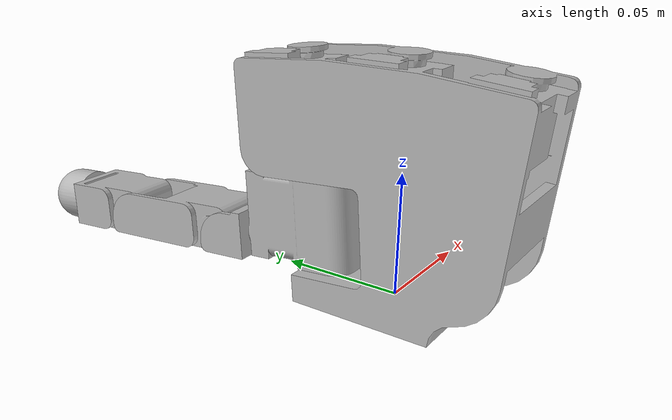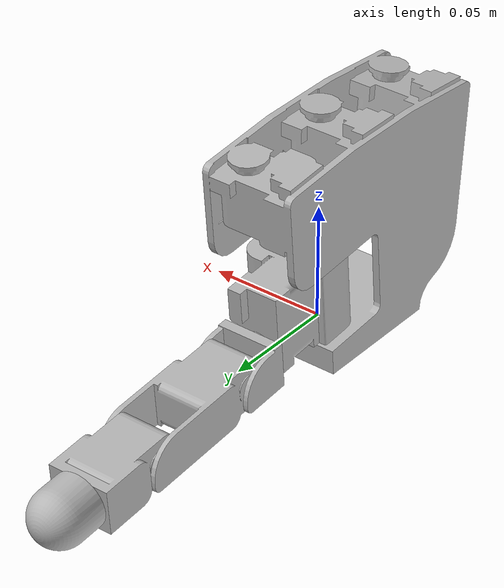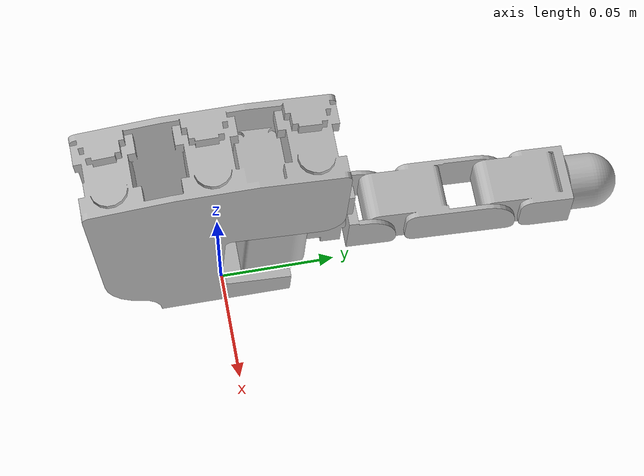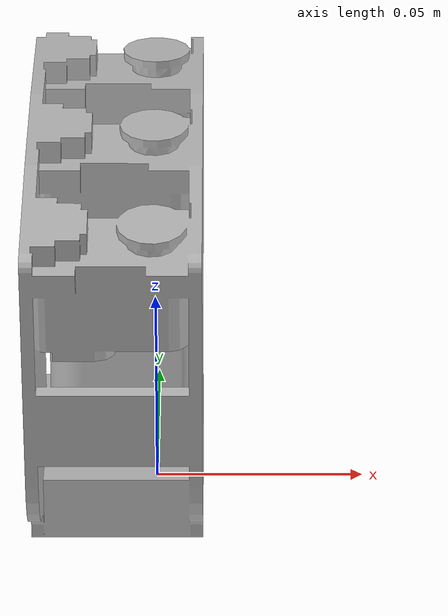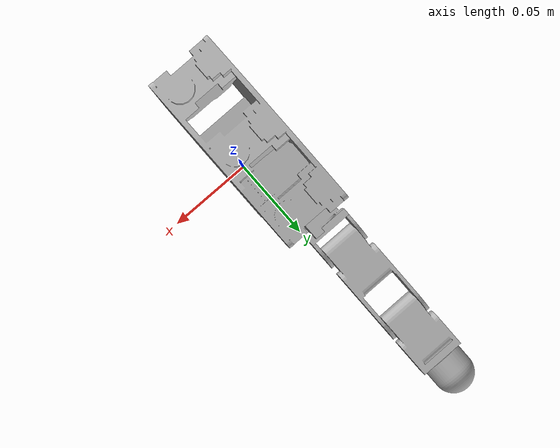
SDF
<?xml version='1.0'?>
<sdf version='1.6'>
  <model name='allegro_hand_right'>
    <link name='hand_root'>
      <pose frame=''>0 0 0 0 -0 0</pose>
      <inertial>
        <pose frame=''>0 0 0 0 -0 0</pose>
        <mass>0.4154</mass>
        <inertia>
          <ixx>    2.089e-03</ixx>
          <ixy>-0.003635e-03</ixy>
          <ixz>   0.2233e-03</ixz>
          <iyy>    1.829e-03</iyy>
          <iyz> -0.01756e-03</iyz>
          <izz>   0.4825e-03</izz>
        </inertia>
      </inertial>
      <collision name='hand_root_fixed_joint_lump__palm_link_collision'>
        <pose frame=''>-0.0093 0 0.0475 0 -0 0</pose>
        <geometry>
          <box>
            <size>0.0408 0.113 0.095</size>
          </box>
        </geometry>
      </collision>
      <visual name='hand_root_fixed_joint_lump__palm_link_visual'>
        <pose frame=''>0 0 0.095 0 -0 0</pose>
        <geometry>
          <mesh>
            <scale>1 1 1</scale>
            <uri>../meshes/base_link.obj</uri>
          </mesh>
        </geometry>
      </visual>
    </link>
    <link name='link_12'>
      <pose frame=''>-0.0182 0.019333 0.049013 3.14159 -1.48353 1.5708</pose>
      <inertial>
        <pose frame=''>0 0 0 0 -0 0</pose>
        <mass>0.0176</mass>
        <inertia>
          <ixx> 0.8139e-05</ixx>
          <ixy> 0.2552e-05</ixy>
          <ixz> 0.3899e-05</ixz>
          <iyy>  1.314e-05</iyy>
          <iyz>-0.1463e-05</iyz>
          <izz>  1.002e-05</izz>
        </inertia>
      </inertial>
      <collision name='link_12_collision'>
        <pose frame=''>-0.0179 0.009 0.0145 0 -0 0</pose>
        <geometry>
          <box>
            <size>0.0358 0.034 0.0455</size>
          </box>
        </geometry>
      </collision>
      <visual name='link_12_visual'>
        <pose frame=''>0 0 0 0 -0 0</pose>
        <geometry>
          <mesh>
            <scale>1 1 1</scale>
            <uri>../meshes/link_12.0_right.obj</uri>
          </mesh>
        </geometry>
      </visual>
    </link>
    <joint name='joint_12' type='revolute'>
      <child>link_12</child>
      <parent>hand_root</parent>
      <axis>
        <xyz>0 -0.087156 -0.996195</xyz>
        <limit>
          <lower>0.263</lower>
          <upper>1.396</upper>
          <effort>0.7</effort>
        </limit>
        <dynamics>
          <damping>1.5e-2</damping>
        </dynamics>
        <use_parent_model_frame>1</use_parent_model_frame>
      </axis>
    </joint>
    <link name='link_13'>
      <pose frame=''>-0.0132 0.056728 0.018638 3.14159 -1.48353 1.5708</pose>
      <inertial>
        <pose frame=''>0 0 0 0 -0 0</pose>
        <mass>0.0119</mass>
        <inertia>
          <ixx>   1.926e-06</ixx>
          <ixy> 0.00305e-06</ixy>
          <ixz> 0.08866e-06</ixz>
          <iyy>   1.153e-06</iyy>
          <iyz>-0.03645e-06</iyz>
          <izz>   1.496e-06</izz>
        </inertia>
      </inertial>
      <visual name='link_13_visual'>
        <pose frame=''>0 0 0 0 -0 0</pose>
        <geometry>
          <mesh>
            <scale>1 1 1</scale>
            <uri>../meshes/link_13.0.obj</uri>
          </mesh>
        </geometry>
      </visual>
    </link>
    <joint name='joint_13' type='revolute'>
      <child>link_13</child>
      <parent>link_12</parent>
      <axis>
        <xyz>0 0.996195 -0.087156</xyz>
        <limit>
          <lower>-0.105</lower>
          <upper>1.163</upper>
          <effort>0.7</effort>
        </limit>
        <dynamics>
          <damping>1.5e-2</damping>
        </dynamics>
        <use_parent_model_frame>1</use_parent_model_frame>
      </axis>
    </joint>
   <link name='link_14'>
      <pose frame=''>-0.0132 0.074361 0.017096 3.14159 -1.48353 1.5708</pose>
      <inertial>
        <pose frame=''>0 0 0 0 -0 0</pose>
        <mass>0.038</mass>
        <inertia>
          <ixx>  3.670e-05</ixx>
          <ixy> 0.0001e-05</ixy>
          <ixz>0.01485e-05</ixz>
          <iyy>  3.540e-05</iyy>
          <iyz>-0.0037e-05</iyz>
          <izz> 0.3633e-05</izz>
        </inertia>
      </inertial>
      <collision name='link_14_collision'>
        <pose frame=''>0 0 0.0257 0 -0 0</pose>
        <geometry>
          <box>
            <size>0.0196 0.0275 0.0514</size>
          </box>
        </geometry>
      </collision>
      <visual name='link_14_visual'>
        <pose frame=''>0 0 0 0 -0 0</pose>
        <geometry>
          <mesh>
            <scale>1 1 1</scale>
            <uri>../meshes/link_14.0.obj</uri>
          </mesh>
        </geometry>
      </visual>
    </link>
    <joint name='joint_14' type='revolute'>
      <child>link_14</child>
      <parent>link_13</parent>
      <axis>
        <xyz>1 0 0</xyz>
        <limit>
          <lower>-0.189</lower>
          <upper>1.644</upper>
          <effort>0.7</effort>
        </limit>
        <dynamics>
          <damping>1.5e-2</damping>
        </dynamics>
        <use_parent_model_frame>1</use_parent_model_frame>
      </axis>
    </joint>
    <link name='link_15'>
      <pose frame=''>-0.0132 0.125565 0.012616 3.14159 -1.48353 1.5708</pose>
      <inertial>
        <pose frame=''>0 0 0.012781 0 -0 0</pose>
        <mass>0.0556</mass>
        <inertia>
          <ixx>  7.054e-05</ixx>
          <ixy>          0</ixy>
          <ixz>          0</ixz>
          <iyy>  6.564e-05</iyy>
          <iyz>-0.0033e-05</iyz>
          <izz>  1.954e-05</izz>
        </inertia>
      </inertial>
      <collision name='link_15_collision'>
        <pose frame=''>0 0 0.02115 0 -0 0</pose>
        <geometry>
          <box>
            <size>0.0196 0.0275 0.0423</size>
          </box>
        </geometry>
	   </collision>
      <collision name='link_15_tip_collision_1'>
        <pose frame=''>0 0 0.0423 0 -0 0</pose>
        <geometry>
          <sphere>
            <radius>0.012</radius>
          </sphere>
        </geometry>
      </collision>
      <visual name='link_15_visual'>
        <pose frame=''>0 0 0 0 -0 0</pose>
        <geometry>
          <mesh>
            <scale>1 1 1</scale>
            <uri>../meshes/link_15.0.obj</uri>
          </mesh>
        </geometry>
      </visual>
      <visual name='link_15_tip_visual_1'>
        <pose frame=''>0 0 0.0423 0 -0 0</pose>
        <geometry>
          <mesh>
            <scale>1 1 1</scale>
            <uri>../meshes/link_15.0_tip.obj</uri>
          </mesh>
        </geometry>
      </visual>
    </link>
    <joint name='joint_15' type='revolute'>
      <child>link_15</child>
      <parent>link_14</parent>
      <axis>
        <xyz>1 0 0</xyz>
        <limit>
          <lower>-0.162</lower>
          <upper>1.719</upper>
          <effort>0.7</effort>
        </limit>
        <dynamics>
          <damping>1.5e-2</damping>
        </dynamics>
        <use_parent_model_frame>1</use_parent_model_frame>
      </axis>
    </joint>
  </model>
</sdf>
